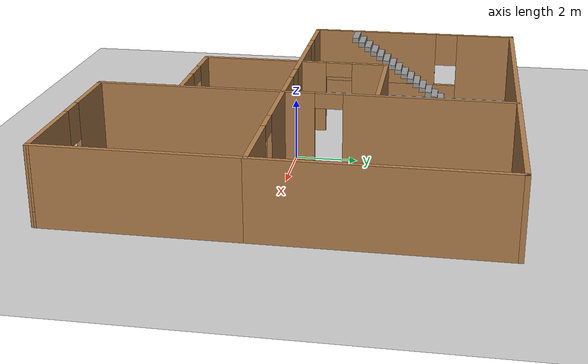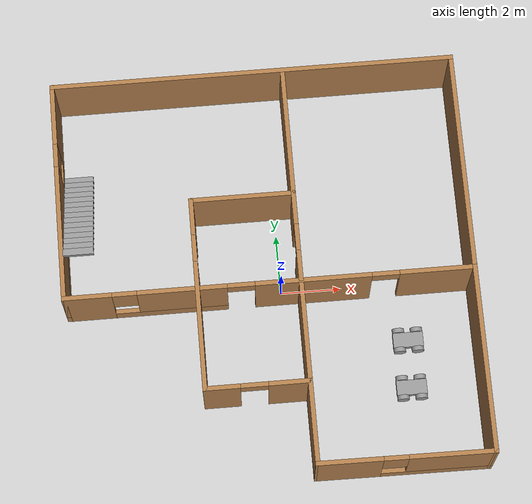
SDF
<sdf version="1.6">
 <world name="default">
  <plugin name="welcome_message" filename="libwelcome_message.so"/>
  <light name="sun" type="directional">
   <pose>0 0 10 0 -0 0</pose>
   <diffuse>0.8 0.8 0.8 1</diffuse>
   <specular>0.2 0.2 0.2 1</specular>
   <attenuation>
    <range>1000</range>
    <constant>0.9</constant>
    <linear>0.01</linear>
    <quadratic>0.001</quadratic>
   </attenuation>
   <direction>-0.5 0.1 -0.9</direction>
  </light>
  <model name="ground_plane">
   <static>1</static>
   <link name="link">
    <collision name="collision">
     <geometry><plane><normal>0 0 1</normal><size>100 100</size></plane></geometry>
     <surface><friction><ode><mu>100</mu><mu2>50</mu2></ode></friction></surface>
    </collision>
    <visual name="visual">
     <cast_shadows>0</cast_shadows>
     <geometry><plane><normal>0 0 1</normal><size>100 100</size></plane></geometry>
     <material>
      <script><uri>file://media/materials/scripts/gazebo.material</uri><name>Gazebo/Grey</name></script>
     </material>
    </visual>
   </link>
  </model>
  <gravity>0 0 -9.8</gravity>
  <magnetic_field>6e-06 2.3e-05 -4.2e-05</magnetic_field>
  <atmosphere type="adiabatic"/>
  <physics name="default_physics" default="0" type="ode">
   <max_step_size>0.001</max_step_size>
   <real_time_factor>1</real_time_factor>
   <real_time_update_rate>1000</real_time_update_rate>
  </physics>
  <scene><ambient>0.4 0.4 0.4 1</ambient><background>0.7 0.7 0.7 1</background><shadows>1</shadows></scene>
  <spherical_coordinates>
   <surface_model>EARTH_WGS84</surface_model>
   <latitude_deg>0</latitude_deg>
   <longitude_deg>0</longitude_deg>
   <elevation>0</elevation>
   <heading_deg>0</heading_deg>
  </spherical_coordinates>
  <model name="model">
   <pose>-0.401008 0.308796 0 0 -0 0</pose>
   <link name="Stairs_0">
    <visual name="Stairs_0_Visual_0">
     <pose>-6.12089 4.20244 0.083333 0 -0 0</pose>
     <geometry><box><size>1 0.233333 0.166667</size></box></geometry>
     <material>
      <script><uri>file://media/materials/scripts/gazebo.material</uri><name>Gazebo/Grey</name></script>
      <ambient>1 1 1 1</ambient>
     </material>
     <meta><layer>0</layer></meta>
    </visual>
    <collision name="Stairs_0_Collision_0">
     <geometry><box><size>1 0.233333 0.166667</size></box></geometry>
     <pose>-6.12089 4.20244 0.083333 0 -0 0</pose>
    </collision>
    <visual name="Stairs_0_Visual_1">
     <pose>-6.12089 3.9691 0.25 0 -0 0</pose>
     <geometry><box><size>1 0.233333 0.166667</size></box></geometry>
     <material>
      <script><uri>file://media/materials/scripts/gazebo.material</uri><name>Gazebo/Grey</name></script>
      <ambient>1 1 1 1</ambient>
     </material>
     <meta><layer>0</layer></meta>
    </visual>
    <collision name="Stairs_0_Collision_1">
     <geometry><box><size>1 0.233333 0.166667</size></box></geometry>
     <pose>-6.12089 3.9691 0.25 0 -0 0</pose>
    </collision>
    <visual name="Stairs_0_Visual_2">
     <pose>-6.12089 3.73577 0.416667 0 -0 0</pose>
     <geometry><box><size>1 0.233333 0.166667</size></box></geometry>
     <material>
      <script><uri>file://media/materials/scripts/gazebo.material</uri><name>Gazebo/Grey</name></script>
      <ambient>1 1 1 1</ambient>
     </material>
     <meta><layer>0</layer></meta>
    </visual>
    <collision name="Stairs_0_Collision_2">
     <geometry><box><size>1 0.233333 0.166667</size></box></geometry>
     <pose>-6.12089 3.73577 0.416667 0 -0 0</pose>
    </collision>
    <visual name="Stairs_0_Visual_3">
     <pose>-6.12089 3.50244 0.583333 0 -0 0</pose>
     <geometry><box><size>1 0.233333 0.166667</size></box></geometry>
     <material>
      <script><uri>file://media/materials/scripts/gazebo.material</uri><name>Gazebo/Grey</name></script>
      <ambient>1 1 1 1</ambient>
     </material>
     <meta><layer>0</layer></meta>
    </visual>
    <collision name="Stairs_0_Collision_3">
     <geometry><box><size>1 0.233333 0.166667</size></box></geometry>
     <pose>-6.12089 3.50244 0.583333 0 -0 0</pose>
    </collision>
    <visual name="Stairs_0_Visual_4">
     <pose>-6.12089 3.26911 0.75 0 -0 0</pose>
     <geometry><box><size>1 0.233333 0.166667</size></box></geometry>
     <material>
      <script><uri>file://media/materials/scripts/gazebo.material</uri><name>Gazebo/Grey</name></script>
      <ambient>1 1 1 1</ambient>
     </material>
     <meta><layer>0</layer></meta>
    </visual>
    <collision name="Stairs_0_Collision_4">
     <geometry><box><size>1 0.233333 0.166667</size></box></geometry>
     <pose>-6.12089 3.26911 0.75 0 -0 0</pose>
    </collision>
    <visual name="Stairs_0_Visual_5">
     <pose>-6.12089 3.03577 0.916667 0 -0 0</pose>
     <geometry><box><size>1 0.233333 0.166667</size></box></geometry>
     <material>
      <script><uri>file://media/materials/scripts/gazebo.material</uri><name>Gazebo/Grey</name></script>
      <ambient>1 1 1 1</ambient>
     </material>
     <meta><layer>0</layer></meta>
    </visual>
    <collision name="Stairs_0_Collision_5">
     <geometry><box><size>1 0.233333 0.166667</size></box></geometry>
     <pose>-6.12089 3.03577 0.916667 0 -0 0</pose>
    </collision>
    <visual name="Stairs_0_Visual_6">
     <pose>-6.12089 2.80244 1.08333 0 -0 0</pose>
     <geometry><box><size>1 0.233333 0.166667</size></box></geometry>
     <material>
      <script><uri>file://media/materials/scripts/gazebo.material</uri><name>Gazebo/Grey</name></script>
      <ambient>1 1 1 1</ambient>
     </material>
     <meta><layer>0</layer></meta>
    </visual>
    <collision name="Stairs_0_Collision_6">
     <geometry><box><size>1 0.233333 0.166667</size></box></geometry>
     <pose>-6.12089 2.80244 1.08333 0 -0 0</pose>
    </collision>
    <visual name="Stairs_0_Visual_7">
     <pose>-6.12089 2.5691 1.25 0 -0 0</pose>
     <geometry><box><size>1 0.233333 0.166667</size></box></geometry>
     <material>
      <script><uri>file://media/materials/scripts/gazebo.material</uri><name>Gazebo/Grey</name></script>
      <ambient>1 1 1 1</ambient>
     </material>
     <meta><layer>0</layer></meta>
    </visual>
    <collision name="Stairs_0_Collision_7">
     <geometry><box><size>1 0.233333 0.166667</size></box></geometry>
     <pose>-6.12089 2.5691 1.25 0 -0 0</pose>
    </collision>
    <visual name="Stairs_0_Visual_8">
     <pose>-6.12089 2.33577 1.41667 0 -0 0</pose>
     <geometry><box><size>1 0.233333 0.166667</size></box></geometry>
     <material>
      <script><uri>file://media/materials/scripts/gazebo.material</uri><name>Gazebo/Grey</name></script>
      <ambient>1 1 1 1</ambient>
     </material>
     <meta><layer>0</layer></meta>
    </visual>
    <collision name="Stairs_0_Collision_8">
     <geometry><box><size>1 0.233333 0.166667</size></box></geometry>
     <pose>-6.12089 2.33577 1.41667 0 -0 0</pose>
    </collision>
    <visual name="Stairs_0_Visual_9">
     <pose>-6.12089 2.10244 1.58333 0 -0 0</pose>
     <geometry><box><size>1 0.233333 0.166667</size></box></geometry>
     <material>
      <script><uri>file://media/materials/scripts/gazebo.material</uri><name>Gazebo/Grey</name></script>
      <ambient>1 1 1 1</ambient>
     </material>
     <meta><layer>0</layer></meta>
    </visual>
    <collision name="Stairs_0_Collision_9">
     <geometry><box><size>1 0.233333 0.166667</size></box></geometry>
     <pose>-6.12089 2.10244 1.58333 0 -0 0</pose>
    </collision>
    <visual name="Stairs_0_Visual_10">
     <pose>-6.12089 1.86911 1.75 0 -0 0</pose>
     <geometry><box><size>1 0.233333 0.166667</size></box></geometry>
     <material>
      <script><uri>file://media/materials/scripts/gazebo.material</uri><name>Gazebo/Grey</name></script>
      <ambient>1 1 1 1</ambient>
     </material>
     <meta><layer>0</layer></meta>
    </visual>
    <collision name="Stairs_0_Collision_10">
     <geometry><box><size>1 0.233333 0.166667</size></box></geometry>
     <pose>-6.12089 1.86911 1.75 0 -0 0</pose>
    </collision>
    <visual name="Stairs_0_Visual_11">
     <pose>-6.12089 1.63577 1.91667 0 -0 0</pose>
     <geometry><box><size>1 0.233333 0.166667</size></box></geometry>
     <material>
      <script><uri>file://media/materials/scripts/gazebo.material</uri><name>Gazebo/Grey</name></script>
      <ambient>1 1 1 1</ambient>
     </material>
     <meta><layer>0</layer></meta>
    </visual>
    <collision name="Stairs_0_Collision_11">
     <geometry><box><size>1 0.233333 0.166667</size></box></geometry>
     <pose>-6.12089 1.63577 1.91667 0 -0 0</pose>
    </collision>
    <visual name="Stairs_0_Visual_12">
     <pose>-6.12089 1.40244 2.08333 0 -0 0</pose>
     <geometry><box><size>1 0.233333 0.166667</size></box></geometry>
     <material>
      <script><uri>file://media/materials/scripts/gazebo.material</uri><name>Gazebo/Grey</name></script>
      <ambient>1 1 1 1</ambient>
     </material>
     <meta><layer>0</layer></meta>
    </visual>
    <collision name="Stairs_0_Collision_12">
     <geometry><box><size>1 0.233333 0.166667</size></box></geometry>
     <pose>-6.12089 1.40244 2.08333 0 -0 0</pose>
    </collision>
    <visual name="Stairs_0_Visual_13">
     <pose>-6.12089 1.16911 2.25 0 -0 0</pose>
     <geometry><box><size>1 0.233333 0.166667</size></box></geometry>
     <material>
      <script><uri>file://media/materials/scripts/gazebo.material</uri><name>Gazebo/Grey</name></script>
      <ambient>1 1 1 1</ambient>
     </material>
     <meta><layer>0</layer></meta>
    </visual>
    <collision name="Stairs_0_Collision_13">
     <geometry><box><size>1 0.233333 0.166667</size></box></geometry>
     <pose>-6.12089 1.16911 2.25 0 -0 0</pose>
    </collision>
    <visual name="Stairs_0_Visual_14">
     <pose>-6.12089 0.935772 2.41667 0 -0 0</pose>
     <geometry><box><size>1 0.233333 0.166667</size></box></geometry>
     <material>
      <script><uri>file://media/materials/scripts/gazebo.material</uri><name>Gazebo/Grey</name></script>
      <ambient>1 1 1 1</ambient>
     </material>
     <meta><layer>0</layer></meta>
    </visual>
    <collision name="Stairs_0_Collision_14">
     <geometry><box><size>1 0.233333 0.166667</size></box></geometry>
     <pose>-6.12089 0.935772 2.41667 0 -0 0</pose>
    </collision>
   </link>
   <link name="Wall_10">
    <collision name="Wall_10_Collision">
     <geometry><box><size>6.25 0.15 2.5</size></box></geometry>
     <pose>0 0 1.25 0 -0 0</pose>
    </collision>
    <visual name="Wall_10_Visual">
     <pose>0 0 1.25 0 -0 0</pose>
     <geometry><box><size>6.25 0.15 2.5</size></box></geometry>
     <material>
      <script><uri>file://media/materials/scripts/gazebo.material</uri><name>Gazebo/Wood</name></script>
      <ambient>1 1 1 1</ambient>
     </material>
     <meta><layer>0</layer></meta>
    </visual>
    <pose>6.67469 -3.67469 0 0 -0 1.5708</pose>
   </link>
   <link name="Wall_12">
    <collision name="Wall_12_Collision">
     <geometry><box><size>3.5 0.15 2.5</size></box></geometry>
     <pose>0 0 1.25 0 -0 0</pose>
    </collision>
    <visual name="Wall_12_Visual">
     <pose>0 0 1.25 0 -0 0</pose>
     <geometry><box><size>3.5 0.15 2.5</size></box></geometry>
     <material>
      <script><uri>file://media/materials/scripts/gazebo.material</uri><name>Gazebo/Wood</name></script>
      <ambient>1 1 1 1</ambient>
     </material>
     <meta><layer>0</layer></meta>
    </visual>
    <pose>-0.67352 2.3745 0 0 -0 3.14159</pose>
   </link>
   <link name="Wall_13">
    <pose>-2.34852 -0.800497 0 0 0 -1.5708</pose>
    <visual name="Wall_13_Visual_0">
     <pose>-2.62079 0 1.25 0 -0 0</pose>
     <geometry><box><size>1.25842 0.15 2.5</size></box></geometry>
     <material>
      <script><uri>file://media/materials/scripts/gazebo.material</uri><name>Gazebo/Wood</name></script>
      <ambient>1 1 1 1</ambient>
     </material>
     <meta><layer>0</layer></meta>
    </visual>
    <collision name="Wall_13_Collision_0">
     <geometry><box><size>1.25842 0.15 2.5</size></box></geometry>
     <pose>-2.62079 0 1.25 0 -0 0</pose>
    </collision>
    <visual name="Wall_13_Visual_1">
     <pose>1.07921 0 1.25 0 -0 0</pose>
     <geometry><box><size>4.34157 0.15 2.5</size></box></geometry>
     <material>
      <script><uri>file://media/materials/scripts/gazebo.material</uri><name>Gazebo/Wood</name></script>
      <ambient>1 1 1 1</ambient>
     </material>
     <meta><layer>0</layer></meta>
    </visual>
    <collision name="Wall_13_Collision_1">
     <geometry><box><size>4.34157 0.15 2.5</size></box></geometry>
     <pose>1.07921 0 1.25 0 -0 0</pose>
    </collision>
    <visual name="Wall_13_Visual_2">
     <pose>-1.54157 0 2.25 0 -0 0</pose>
     <geometry><box><size>0.9 0.15 0.5</size></box></geometry>
     <material>
      <script><uri>file://media/materials/scripts/gazebo.material</uri><name>Gazebo/Wood</name></script>
      <ambient>1 1 1 1</ambient>
     </material>
     <meta><layer>0</layer></meta>
    </visual>
    <collision name="Wall_13_Collision_2">
     <geometry><box><size>0.9 0.15 0.5</size></box></geometry>
     <pose>-1.54157 0 2.25 0 -0 0</pose>
    </collision>
   </link>
   <link name="Wall_14">
    <pose>-0.67352 -3.9755 0 0 -0 0</pose>
    <visual name="Wall_14_Visual_0">
     <pose>-1.14388 0 1.25 0 -0 0</pose>
     <geometry><box><size>1.21223 0.15 2.5</size></box></geometry>
     <material>
      <script><uri>file://media/materials/scripts/gazebo.material</uri><name>Gazebo/Wood</name></script>
      <ambient>1 1 1 1</ambient>
     </material>
     <meta><layer>0</layer></meta>
    </visual>
    <collision name="Wall_14_Collision_0">
     <geometry><box><size>1.21223 0.15 2.5</size></box></geometry>
     <pose>-1.14388 0 1.25 0 -0 0</pose>
    </collision>
    <visual name="Wall_14_Visual_1">
     <pose>1.05612 0 1.25 0 -0 0</pose>
     <geometry><box><size>1.38777 0.15 2.5</size></box></geometry>
     <material>
      <script><uri>file://media/materials/scripts/gazebo.material</uri><name>Gazebo/Wood</name></script>
      <ambient>1 1 1 1</ambient>
     </material>
     <meta><layer>0</layer></meta>
    </visual>
    <collision name="Wall_14_Collision_1">
     <geometry><box><size>1.38777 0.15 2.5</size></box></geometry>
     <pose>1.05612 0 1.25 0 -0 0</pose>
    </collision>
    <visual name="Wall_14_Visual_2">
     <pose>-0.087766 0 2.25 0 -0 0</pose>
     <geometry><box><size>0.9 0.15 0.5</size></box></geometry>
     <material>
      <script><uri>file://media/materials/scripts/gazebo.material</uri><name>Gazebo/Wood</name></script>
      <ambient>1 1 1 1</ambient>
     </material>
     <meta><layer>0</layer></meta>
    </visual>
    <collision name="Wall_14_Collision_2">
     <geometry><box><size>0.9 0.15 0.5</size></box></geometry>
     <pose>-0.087766 0 2.25 0 -0 0</pose>
    </collision>
   </link>
   <link name="Wall_3">
    <pose>-6.67531 3.05031 0 0 0 -1.5708</pose>
    <visual name="Wall_3_Visual_0">
     <pose>-2.7056 0 1.25 0 -0 0</pose>
     <geometry><box><size>2.0888 0.15 2.5</size></box></geometry>
     <material>
      <script><uri>file://media/materials/scripts/gazebo.material</uri><name>Gazebo/Wood</name></script>
      <ambient>1 1 1 1</ambient>
     </material>
     <meta><layer>0</layer></meta>
    </visual>
    <collision name="Wall_3_Collision_0">
     <geometry><box><size>2.0888 0.15 2.5</size></box></geometry>
     <pose>-2.7056 0 1.25 0 -0 0</pose>
    </collision>
    <visual name="Wall_3_Visual_1">
     <pose>1.0444 0 0.25 0 -0 0</pose>
     <geometry><box><size>5.4112 0.15 0.5</size></box></geometry>
     <material>
      <script><uri>file://media/materials/scripts/gazebo.material</uri><name>Gazebo/Wood</name></script>
      <ambient>1 1 1 1</ambient>
     </material>
     <meta><layer>0</layer></meta>
    </visual>
    <collision name="Wall_3_Collision_1">
     <geometry><box><size>5.4112 0.15 0.5</size></box></geometry>
     <pose>1.0444 0 0.25 0 -0 0</pose>
    </collision>
    <visual name="Wall_3_Visual_2">
     <pose>1.4444 0 1.5 0 -0 0</pose>
     <geometry><box><size>4.6112 0.15 2</size></box></geometry>
     <material>
      <script><uri>file://media/materials/scripts/gazebo.material</uri><name>Gazebo/Wood</name></script>
      <ambient>1 1 1 1</ambient>
     </material>
     <meta><layer>0</layer></meta>
    </visual>
    <collision name="Wall_3_Collision_2">
     <geometry><box><size>4.6112 0.15 2</size></box></geometry>
     <pose>1.4444 0 1.5 0 -0 0</pose>
    </collision>
    <visual name="Wall_3_Visual_3">
     <pose>-1.2612 0 1.9 0 -0 0</pose>
     <geometry><box><size>0.8 0.15 1.2</size></box></geometry>
     <material>
      <script><uri>file://media/materials/scripts/gazebo.material</uri><name>Gazebo/Wood</name></script>
      <ambient>1 1 1 1</ambient>
     </material>
     <meta><layer>0</layer></meta>
    </visual>
    <collision name="Wall_3_Collision_3">
     <geometry><box><size>0.8 0.15 1.2</size></box></geometry>
     <pose>-1.2612 0 1.9 0 -0 0</pose>
    </collision>
   </link>
   <link name="Wall_4">
    <pose>-0.000311 -0.624689 0 0 -0 0</pose>
    <visual name="Wall_4_Visual_0">
     <pose>-5.93232 0 1.25 0 -0 0</pose>
     <geometry><box><size>1.63535 0.15 2.5</size></box></geometry>
     <material>
      <script><uri>file://media/materials/scripts/gazebo.material</uri><name>Gazebo/Wood</name></script>
      <ambient>1 1 1 1</ambient>
     </material>
     <meta><layer>0</layer></meta>
    </visual>
    <collision name="Wall_4_Collision_0">
     <geometry><box><size>1.63535 0.15 2.5</size></box></geometry>
     <pose>-5.93232 0 1.25 0 -0 0</pose>
    </collision>
    <visual name="Wall_4_Visual_1">
     <pose>1.42467 0 1.25 0 -0 0</pose>
     <geometry><box><size>3.80773 0.15 2.5</size></box></geometry>
     <material>
      <script><uri>file://media/materials/scripts/gazebo.material</uri><name>Gazebo/Wood</name></script>
      <ambient>1 1 1 1</ambient>
     </material>
     <meta><layer>0</layer></meta>
    </visual>
    <collision name="Wall_4_Collision_1">
     <geometry><box><size>3.80773 0.15 2.5</size></box></geometry>
     <pose>1.42467 0 1.25 0 -0 0</pose>
    </collision>
    <visual name="Wall_4_Visual_2">
     <pose>5.48927 0 1.25 0 -0 0</pose>
     <geometry><box><size>2.52147 0.15 2.5</size></box></geometry>
     <material>
      <script><uri>file://media/materials/scripts/gazebo.material</uri><name>Gazebo/Wood</name></script>
      <ambient>1 1 1 1</ambient>
     </material>
     <meta><layer>0</layer></meta>
    </visual>
    <collision name="Wall_4_Collision_2">
     <geometry><box><size>2.52147 0.15 2.5</size></box></geometry>
     <pose>5.48927 0 1.25 0 -0 0</pose>
    </collision>
    <visual name="Wall_4_Visual_3">
     <pose>-3.24693 0 0.25 0 -0 0</pose>
     <geometry><box><size>3.73545 0.15 0.5</size></box></geometry>
     <material>
      <script><uri>file://media/materials/scripts/gazebo.material</uri><name>Gazebo/Wood</name></script>
      <ambient>1 1 1 1</ambient>
     </material>
     <meta><layer>0</layer></meta>
    </visual>
    <collision name="Wall_4_Collision_3">
     <geometry><box><size>3.73545 0.15 0.5</size></box></geometry>
     <pose>-3.24693 0 0.25 0 -0 0</pose>
    </collision>
    <visual name="Wall_4_Visual_4">
     <pose>-2.84693 0 1.5 0 -0 0</pose>
     <geometry><box><size>2.93545 0.15 2</size></box></geometry>
     <material>
      <script><uri>file://media/materials/scripts/gazebo.material</uri><name>Gazebo/Wood</name></script>
      <ambient>1 1 1 1</ambient>
     </material>
     <meta><layer>0</layer></meta>
    </visual>
    <collision name="Wall_4_Collision_4">
     <geometry><box><size>2.93545 0.15 2</size></box></geometry>
     <pose>-2.84693 0 1.5 0 -0 0</pose>
    </collision>
    <visual name="Wall_4_Visual_5">
     <pose>-4.71465 0 1.9 0 -0 0</pose>
     <geometry><box><size>0.8 0.15 1.2</size></box></geometry>
     <material>
      <script><uri>file://media/materials/scripts/gazebo.material</uri><name>Gazebo/Wood</name></script>
      <ambient>1 1 1 1</ambient>
     </material>
     <meta><layer>0</layer></meta>
    </visual>
    <collision name="Wall_4_Collision_5">
     <geometry><box><size>0.8 0.15 1.2</size></box></geometry>
     <pose>-4.71465 0 1.9 0 -0 0</pose>
    </collision>
    <visual name="Wall_4_Visual_6">
     <pose>3.77853 0 2.25 0 -0 0</pose>
     <geometry><box><size>0.9 0.15 0.5</size></box></geometry>
     <material>
      <script><uri>file://media/materials/scripts/gazebo.material</uri><name>Gazebo/Wood</name></script>
      <ambient>1 1 1 1</ambient>
     </material>
     <meta><layer>0</layer></meta>
    </visual>
    <collision name="Wall_4_Collision_6">
     <geometry><box><size>0.9 0.15 0.5</size></box></geometry>
     <pose>3.77853 0 2.25 0 -0 0</pose>
    </collision>
    <visual name="Wall_4_Visual_7">
     <pose>-0.9292 0 2.25 0 -0 0</pose>
     <geometry><box><size>0.9 0.15 0.5</size></box></geometry>
     <material>
      <script><uri>file://media/materials/scripts/gazebo.material</uri><name>Gazebo/Wood</name></script>
      <ambient>1 1 1 1</ambient>
     </material>
     <meta><layer>0</layer></meta>
    </visual>
    <collision name="Wall_4_Collision_7">
     <geometry><box><size>0.9 0.15 0.5</size></box></geometry>
     <pose>-0.9292 0 2.25 0 -0 0</pose>
    </collision>
   </link>
   <link name="Wall_5">
    <collision name="Wall_5_Collision">
     <geometry><box><size>7.5 0.15 2.5</size></box></geometry>
     <pose>0 0 1.25 0 -0 0</pose>
    </collision>
    <visual name="Wall_5_Visual">
     <pose>0 0 1.25 0 -0 0</pose>
     <geometry><box><size>7.5 0.15 2.5</size></box></geometry>
     <material>
      <script><uri>file://media/materials/scripts/gazebo.material</uri><name>Gazebo/Wood</name></script>
      <ambient>1 1 1 1</ambient>
     </material>
     <meta><layer>0</layer></meta>
    </visual>
    <pose>6.67469 3.05031 0 0 -0 1.5708</pose>
   </link>
   <link name="Wall_6">
    <collision name="Wall_6_Collision">
     <geometry><box><size>13.5 0.15 2.5</size></box></geometry>
     <pose>0 0 1.25 0 -0 0</pose>
    </collision>
    <visual name="Wall_6_Visual">
     <pose>0 0 1.25 0 -0 0</pose>
     <geometry><box><size>13.5 0.15 2.5</size></box></geometry>
     <material>
      <script><uri>file://media/materials/scripts/gazebo.material</uri><name>Gazebo/Wood</name></script>
      <ambient>1 1 1 1</ambient>
     </material>
     <meta><layer>0</layer></meta>
    </visual>
    <pose>-0.000311 6.72531 0 0 -0 3.14159</pose>
   </link>
   <link name="Wall_8">
    <pose>1.02164 -0.002589 0 0 0 -1.5708</pose>
    <visual name="Wall_8_Visual_0">
     <pose>-4.02595 0 1.25 0 -0 0</pose>
     <geometry><box><size>5.44811 0.15 2.5</size></box></geometry>
     <material>
      <script><uri>file://media/materials/scripts/gazebo.material</uri><name>Gazebo/Wood</name></script>
      <ambient>1 1 1 1</ambient>
     </material>
     <meta><layer>0</layer></meta>
    </visual>
    <collision name="Wall_8_Collision_0">
     <geometry><box><size>5.44811 0.15 2.5</size></box></geometry>
     <pose>-4.02595 0 1.25 0 -0 0</pose>
    </collision>
    <visual name="Wall_8_Visual_1">
     <pose>3.17406 0 1.25 0 -0 0</pose>
     <geometry><box><size>7.15189 0.15 2.5</size></box></geometry>
     <material>
      <script><uri>file://media/materials/scripts/gazebo.material</uri><name>Gazebo/Wood</name></script>
      <ambient>1 1 1 1</ambient>
     </material>
     <meta><layer>0</layer></meta>
    </visual>
    <collision name="Wall_8_Collision_1">
     <geometry><box><size>7.15189 0.15 2.5</size></box></geometry>
     <pose>3.17406 0 1.25 0 -0 0</pose>
    </collision>
    <visual name="Wall_8_Visual_2">
     <pose>-0.85189 0 2.25 0 -0 0</pose>
     <geometry><box><size>0.9 0.15 0.5</size></box></geometry>
     <material>
      <script><uri>file://media/materials/scripts/gazebo.material</uri><name>Gazebo/Wood</name></script>
      <ambient>1 1 1 1</ambient>
     </material>
     <meta><layer>0</layer></meta>
    </visual>
    <collision name="Wall_8_Collision_2">
     <geometry><box><size>0.9 0.15 0.5</size></box></geometry>
     <pose>-0.85189 0 2.25 0 -0 0</pose>
    </collision>
   </link>
   <link name="Wall_9">
    <pose>3.84816 -6.70114 0 0 0 -0.008332</pose>
    <visual name="Wall_9_Visual_0">
     <pose>-1.81964 0 1.25 0 -0 0</pose>
     <geometry><box><size>2.16396 0.15 2.5</size></box></geometry>
     <material>
      <script><uri>file://media/materials/scripts/gazebo.material</uri><name>Gazebo/Wood</name></script>
      <ambient>1 1 1 1</ambient>
     </material>
     <meta><layer>0</layer></meta>
    </visual>
    <collision name="Wall_9_Collision_0">
     <geometry><box><size>2.16396 0.15 2.5</size></box></geometry>
     <pose>-1.81964 0 1.25 0 -0 0</pose>
    </collision>
    <visual name="Wall_9_Visual_1">
     <pose>1.08198 0 0.25 0 -0 0</pose>
     <geometry><box><size>3.63928 0.15 0.5</size></box></geometry>
     <material>
      <script><uri>file://media/materials/scripts/gazebo.material</uri><name>Gazebo/Wood</name></script>
      <ambient>1 1 1 1</ambient>
     </material>
     <meta><layer>0</layer></meta>
    </visual>
    <collision name="Wall_9_Collision_1">
     <geometry><box><size>3.63928 0.15 0.5</size></box></geometry>
     <pose>1.08198 0 0.25 0 -0 0</pose>
    </collision>
    <visual name="Wall_9_Visual_2">
     <pose>1.48198 0 1.5 0 -0 0</pose>
     <geometry><box><size>2.83928 0.15 2</size></box></geometry>
     <material>
      <script><uri>file://media/materials/scripts/gazebo.material</uri><name>Gazebo/Wood</name></script>
      <ambient>1 1 1 1</ambient>
     </material>
     <meta><layer>0</layer></meta>
    </visual>
    <collision name="Wall_9_Collision_2">
     <geometry><box><size>2.83928 0.15 2</size></box></geometry>
     <pose>1.48198 0 1.5 0 -0 0</pose>
    </collision>
    <visual name="Wall_9_Visual_3">
     <pose>-0.33766 0 1.9 0 -0 0</pose>
     <geometry><box><size>0.8 0.15 1.2</size></box></geometry>
     <material>
      <script><uri>file://media/materials/scripts/gazebo.material</uri><name>Gazebo/Wood</name></script>
      <ambient>1 1 1 1</ambient>
     </material>
     <meta><layer>0</layer></meta>
    </visual>
    <collision name="Wall_9_Collision_3">
     <geometry><box><size>0.8 0.15 1.2</size></box></geometry>
     <pose>-0.33766 0 1.9 0 -0 0</pose>
    </collision>
   </link>
   <static>1</static>
  </model>
  <model name="model_0">
   <link name="link_0">
    <inertial>
     <mass>1</mass>
     <inertia>
      <ixx>0.166667</ixx>
      <ixy>0</ixy>
      <ixz>0</ixz>
      <iyy>0.166667</iyy>
      <iyz>0</iyz>
      <izz>0.166667</izz>
     </inertia>
    </inertial>
    <visual name="visual">
     <geometry><box><size>1 0.5 0.2</size></box></geometry>
     <material>
      <lighting>1</lighting>
      <script><uri>file://media/materials/scripts/gazebo.material</uri><name>Gazebo/Grey</name></script>
      <shader type="pixel"><normal_map>__default__</normal_map></shader>
      <ambient>0.3 0.3 0.3 1</ambient>
      <diffuse>0.7 0.7 0.7 1</diffuse>
      <specular>0.01 0.01 0.01 1</specular>
      <emissive>0 0 0 1</emissive>
     </material>
    </visual>
    <collision name="collision">
     <geometry><box><size>1 0.5 0.2</size></box></geometry>
     <surface>
      <friction>
       <ode><mu>1</mu><mu2>1</mu2><fdir1>0 0 0</fdir1><slip1>0</slip1><slip2>0</slip2></ode>
       <torsional>
        <coefficient>1</coefficient>
        <patch_radius>0</patch_radius>
        <surface_radius>0</surface_radius>
        <use_patch_radius>1</use_patch_radius>
        <ode><slip>0</slip></ode>
       </torsional>
      </friction>
      <bounce><restitution_coefficient>0</restitution_coefficient><threshold>1e+06</threshold></bounce>
      <contact>
       <collide_without_contact>0</collide_without_contact>
       <collide_without_contact_bitmask>1</collide_without_contact_bitmask>
       <collide_bitmask>1</collide_bitmask>
       <ode>
        <soft_cfm>0</soft_cfm>
        <soft_erp>0.2</soft_erp>
        <kp>1e+13</kp>
        <kd>1</kd>
        <max_vel>0.01</max_vel>
        <min_depth>0</min_depth>
       </ode>
       <bullet>
        <split_impulse>1</split_impulse>
        <split_impulse_penetration_threshold>-0.01</split_impulse_penetration_threshold>
        <soft_cfm>0</soft_cfm>
        <soft_erp>0.2</soft_erp>
        <kp>1e+13</kp>
        <kd>1</kd>
       </bullet>
      </contact>
     </surface>
    </collision>
   </link>
   <link name="link_1">
    <pose>0.3 -0.325019 0 1.5707 -0 0</pose>
    <inertial>
     <mass>1</mass>
     <inertia><ixx>0.145833</ixx><ixy>0</ixy><ixz>0</ixz><iyy>0.145833</iyy><iyz>0</iyz><izz>0.125</izz></inertia>
    </inertial>
    <visual name="visual">
     <geometry><cylinder><radius>0.2</radius><length>0.15</length></cylinder></geometry>
     <material>
      <lighting>1</lighting>
      <script><uri>file://media/materials/scripts/gazebo.material</uri><name>Gazebo/Grey</name></script>
      <shader type="pixel"><normal_map>__default__</normal_map></shader>
      <ambient>0.3 0.3 0.3 1</ambient>
      <diffuse>0.7 0.7 0.7 1</diffuse>
      <specular>0.01 0.01 0.01 1</specular>
      <emissive>0 0 0 1</emissive>
     </material>
    </visual>
    <collision name="collision">
     <geometry><cylinder><radius>0.2</radius><length>0.15</length></cylinder></geometry>
     <surface>
      <friction>
       <ode><mu>1</mu><mu2>1</mu2><fdir1>0 0 0</fdir1><slip1>0</slip1><slip2>0</slip2></ode>
       <torsional>
        <coefficient>1</coefficient>
        <patch_radius>0</patch_radius>
        <surface_radius>0</surface_radius>
        <use_patch_radius>1</use_patch_radius>
        <ode><slip>0</slip></ode>
       </torsional>
      </friction>
      <bounce><restitution_coefficient>0</restitution_coefficient><threshold>1e+06</threshold></bounce>
      <contact>
       <collide_without_contact>0</collide_without_contact>
       <collide_without_contact_bitmask>1</collide_without_contact_bitmask>
       <collide_bitmask>1</collide_bitmask>
       <ode>
        <soft_cfm>0</soft_cfm>
        <soft_erp>0.2</soft_erp>
        <kp>1e+13</kp>
        <kd>1</kd>
        <max_vel>0.01</max_vel>
        <min_depth>0</min_depth>
       </ode>
       <bullet>
        <split_impulse>1</split_impulse>
        <split_impulse_penetration_threshold>-0.01</split_impulse_penetration_threshold>
        <soft_cfm>0</soft_cfm>
        <soft_erp>0.2</soft_erp>
        <kp>1e+13</kp>
        <kd>1</kd>
       </bullet>
      </contact>
     </surface>
    </collision>
   </link>
   <link name="link_1_clone">
    <pose>0.3 0.325019 0 1.5707 -0 0</pose>
    <inertial>
     <mass>1</mass>
     <inertia><ixx>0.145833</ixx><ixy>0</ixy><ixz>0</ixz><iyy>0.145833</iyy><iyz>0</iyz><izz>0.125</izz></inertia>
    </inertial>
    <visual name="visual">
     <geometry><cylinder><radius>0.2</radius><length>0.15</length></cylinder></geometry>
     <material>
      <lighting>1</lighting>
      <script><uri>file://media/materials/scripts/gazebo.material</uri><name>Gazebo/Grey</name></script>
      <shader type="pixel"><normal_map>__default__</normal_map></shader>
      <ambient>0.3 0.3 0.3 1</ambient>
      <diffuse>0.7 0.7 0.7 1</diffuse>
      <specular>0.01 0.01 0.01 1</specular>
      <emissive>0 0 0 1</emissive>
     </material>
    </visual>
    <collision name="collision">
     <geometry><cylinder><radius>0.2</radius><length>0.15</length></cylinder></geometry>
     <surface>
      <friction>
       <ode><mu>1</mu><mu2>1</mu2><fdir1>0 0 0</fdir1><slip1>0</slip1><slip2>0</slip2></ode>
       <torsional>
        <coefficient>1</coefficient>
        <patch_radius>0</patch_radius>
        <surface_radius>0</surface_radius>
        <use_patch_radius>1</use_patch_radius>
        <ode><slip>0</slip></ode>
       </torsional>
      </friction>
      <bounce><restitution_coefficient>0</restitution_coefficient><threshold>1e+06</threshold></bounce>
      <contact>
       <collide_without_contact>0</collide_without_contact>
       <collide_without_contact_bitmask>1</collide_without_contact_bitmask>
       <collide_bitmask>1</collide_bitmask>
       <ode>
        <soft_cfm>0</soft_cfm>
        <soft_erp>0.2</soft_erp>
        <kp>1e+13</kp>
        <kd>1</kd>
        <max_vel>0.01</max_vel>
        <min_depth>0</min_depth>
       </ode>
       <bullet>
        <split_impulse>1</split_impulse>
        <split_impulse_penetration_threshold>-0.01</split_impulse_penetration_threshold>
        <soft_cfm>0</soft_cfm>
        <soft_erp>0.2</soft_erp>
        <kp>1e+13</kp>
        <kd>1</kd>
       </bullet>
      </contact>
     </surface>
    </collision>
   </link>
   <link name="link_1_clone_0">
    <pose>-0.3 0.325019 0 1.5707 -0 0</pose>
    <inertial>
     <mass>1</mass>
     <inertia><ixx>0.145833</ixx><ixy>0</ixy><ixz>0</ixz><iyy>0.145833</iyy><iyz>0</iyz><izz>0.125</izz></inertia>
    </inertial>
    <visual name="visual">
     <geometry><cylinder><radius>0.2</radius><length>0.15</length></cylinder></geometry>
     <material>
      <lighting>1</lighting>
      <script><uri>file://media/materials/scripts/gazebo.material</uri><name>Gazebo/Grey</name></script>
      <shader type="pixel"><normal_map>__default__</normal_map></shader>
      <ambient>0.3 0.3 0.3 1</ambient>
      <diffuse>0.7 0.7 0.7 1</diffuse>
      <specular>0.01 0.01 0.01 1</specular>
      <emissive>0 0 0 1</emissive>
     </material>
    </visual>
    <collision name="collision">
     <geometry><cylinder><radius>0.2</radius><length>0.15</length></cylinder></geometry>
     <surface>
      <friction>
       <ode><mu>1</mu><mu2>1</mu2><fdir1>0 0 0</fdir1><slip1>0</slip1><slip2>0</slip2></ode>
       <torsional>
        <coefficient>1</coefficient>
        <patch_radius>0</patch_radius>
        <surface_radius>0</surface_radius>
        <use_patch_radius>1</use_patch_radius>
        <ode><slip>0</slip></ode>
       </torsional>
      </friction>
      <bounce><restitution_coefficient>0</restitution_coefficient><threshold>1e+06</threshold></bounce>
      <contact>
       <collide_without_contact>0</collide_without_contact>
       <collide_without_contact_bitmask>1</collide_without_contact_bitmask>
       <collide_bitmask>1</collide_bitmask>
       <ode>
        <soft_cfm>0</soft_cfm>
        <soft_erp>0.2</soft_erp>
        <kp>1e+13</kp>
        <kd>1</kd>
        <max_vel>0.01</max_vel>
        <min_depth>0</min_depth>
       </ode>
       <bullet>
        <split_impulse>1</split_impulse>
        <split_impulse_penetration_threshold>-0.01</split_impulse_penetration_threshold>
        <soft_cfm>0</soft_cfm>
        <soft_erp>0.2</soft_erp>
        <kp>1e+13</kp>
        <kd>1</kd>
       </bullet>
      </contact>
     </surface>
    </collision>
   </link>
   <link name="link_1_clone_1">
    <pose>-0.3 -0.325019 0 1.5707 -0 0</pose>
    <inertial>
     <mass>1</mass>
     <inertia><ixx>0.145833</ixx><ixy>0</ixy><ixz>0</ixz><iyy>0.145833</iyy><iyz>0</iyz><izz>0.125</izz></inertia>
    </inertial>
    <visual name="visual">
     <geometry><cylinder><radius>0.2</radius><length>0.15</length></cylinder></geometry>
     <material>
      <lighting>1</lighting>
      <script><uri>file://media/materials/scripts/gazebo.material</uri><name>Gazebo/Grey</name></script>
      <shader type="pixel"><normal_map>__default__</normal_map></shader>
      <ambient>0.3 0.3 0.3 1</ambient>
      <diffuse>0.7 0.7 0.7 1</diffuse>
      <specular>0.01 0.01 0.01 1</specular>
      <emissive>0 0 0 1</emissive>
     </material>
    </visual>
    <collision name="collision">
     <geometry><cylinder><radius>0.2</radius><length>0.15</length></cylinder></geometry>
     <surface>
      <friction>
       <ode><mu>1</mu><mu2>1</mu2><fdir1>0 0 0</fdir1><slip1>0</slip1><slip2>0</slip2></ode>
       <torsional>
        <coefficient>1</coefficient>
        <patch_radius>0</patch_radius>
        <surface_radius>0</surface_radius>
        <use_patch_radius>1</use_patch_radius>
        <ode><slip>0</slip></ode>
       </torsional>
      </friction>
      <bounce><restitution_coefficient>0</restitution_coefficient><threshold>1e+06</threshold></bounce>
      <contact>
       <collide_without_contact>0</collide_without_contact>
       <collide_without_contact_bitmask>1</collide_without_contact_bitmask>
       <collide_bitmask>1</collide_bitmask>
       <ode>
        <soft_cfm>0</soft_cfm>
        <soft_erp>0.2</soft_erp>
        <kp>1e+13</kp>
        <kd>1</kd>
        <max_vel>0.01</max_vel>
        <min_depth>0</min_depth>
       </ode>
       <bullet>
        <split_impulse>1</split_impulse>
        <split_impulse_penetration_threshold>-0.01</split_impulse_penetration_threshold>
        <soft_cfm>0</soft_cfm>
        <soft_erp>0.2</soft_erp>
        <kp>1e+13</kp>
        <kd>1</kd>
       </bullet>
      </contact>
     </surface>
    </collision>
   </link>
   <joint name="link_0_JOINT_0" type="revolute">
    <parent>link_0</parent>
    <child>link_1</child>
    <axis>
     <xyz>0 0 1</xyz>
     <use_parent_model_frame>0</use_parent_model_frame>
     <limit>
      <lower>-1.79769e+308</lower>
      <upper>1.79769e+308</upper>
      <effort>-1</effort>
      <velocity>-1</velocity>
     </limit>
     <dynamics>
      <spring_reference>0</spring_reference>
      <spring_stiffness>0</spring_stiffness>
      <damping>0</damping>
     </dynamics>
    </axis>
    <physics>
     <ode><limit><cfm>0</cfm><erp>0.2</erp></limit><suspension><cfm>0</cfm><erp>0.2</erp></suspension></ode>
    </physics>
   </joint>
   <joint name="link_0_JOINT_1" type="revolute">
    <parent>link_0</parent>
    <child>link_1_clone</child>
    <axis>
     <xyz>0 0 1</xyz>
     <use_parent_model_frame>0</use_parent_model_frame>
     <limit>
      <lower>-1.79769e+308</lower>
      <upper>1.79769e+308</upper>
      <effort>-1</effort>
      <velocity>-1</velocity>
     </limit>
     <dynamics>
      <spring_reference>0</spring_reference>
      <spring_stiffness>0</spring_stiffness>
      <damping>0</damping>
     </dynamics>
    </axis>
    <physics>
     <ode><limit><cfm>0</cfm><erp>0.2</erp></limit><suspension><cfm>0</cfm><erp>0.2</erp></suspension></ode>
    </physics>
   </joint>
   <joint name="link_0_JOINT_2" type="revolute">
    <parent>link_0</parent>
    <child>link_1_clone_0</child>
    <axis>
     <xyz>0 0 1</xyz>
     <use_parent_model_frame>0</use_parent_model_frame>
     <limit>
      <lower>-1.79769e+308</lower>
      <upper>1.79769e+308</upper>
      <effort>-1</effort>
      <velocity>-1</velocity>
     </limit>
     <dynamics>
      <spring_reference>0</spring_reference>
      <spring_stiffness>0</spring_stiffness>
      <damping>0</damping>
     </dynamics>
    </axis>
    <physics>
     <ode><limit><cfm>0</cfm><erp>0.2</erp></limit><suspension><cfm>0</cfm><erp>0.2</erp></suspension></ode>
    </physics>
   </joint>
   <joint name="link_0_JOINT_3" type="revolute">
    <parent>link_0</parent>
    <child>link_1_clone_1</child>
    <axis>
     <xyz>0 0 1</xyz>
     <use_parent_model_frame>0</use_parent_model_frame>
     <limit>
      <lower>-1.79769e+308</lower>
      <upper>1.79769e+308</upper>
      <effort>-1</effort>
      <velocity>-1</velocity>
     </limit>
     <dynamics>
      <spring_reference>0</spring_reference>
      <spring_stiffness>0</spring_stiffness>
      <damping>0</damping>
     </dynamics>
    </axis>
    <physics>
     <ode><limit><cfm>0</cfm><erp>0.2</erp></limit><suspension><cfm>0</cfm><erp>0.2</erp></suspension></ode>
    </physics>
   </joint>
   <static>0</static>
   <pose>4.06267 -2.01109 0.200008 -0 -3e-06 -0.00243</pose>
  </model>
  <model name="model_1">
   <link name="link_0">
    <inertial>
     <mass>1</mass>
     <inertia>
      <ixx>0.166667</ixx>
      <ixy>0</ixy>
      <ixz>0</ixz>
      <iyy>0.166667</iyy>
      <iyz>0</iyz>
      <izz>0.166667</izz>
     </inertia>
    </inertial>
    <visual name="visual">
     <geometry><box><size>1 0.5 0.2</size></box></geometry>
     <material>
      <lighting>1</lighting>
      <script><uri>file://media/materials/scripts/gazebo.material</uri><name>Gazebo/Grey</name></script>
      <shader type="pixel"><normal_map>__default__</normal_map></shader>
      <ambient>0.3 0.3 0.3 1</ambient>
      <diffuse>0.7 0.7 0.7 1</diffuse>
      <specular>0.01 0.01 0.01 1</specular>
      <emissive>0 0 0 1</emissive>
     </material>
    </visual>
    <collision name="collision">
     <geometry><box><size>1 0.5 0.2</size></box></geometry>
     <surface>
      <friction>
       <ode><mu>1</mu><mu2>1</mu2><fdir1>0 0 0</fdir1><slip1>0</slip1><slip2>0</slip2></ode>
       <torsional>
        <coefficient>1</coefficient>
        <patch_radius>0</patch_radius>
        <surface_radius>0</surface_radius>
        <use_patch_radius>1</use_patch_radius>
        <ode><slip>0</slip></ode>
       </torsional>
      </friction>
      <bounce><restitution_coefficient>0</restitution_coefficient><threshold>1e+06</threshold></bounce>
      <contact>
       <collide_without_contact>0</collide_without_contact>
       <collide_without_contact_bitmask>1</collide_without_contact_bitmask>
       <collide_bitmask>1</collide_bitmask>
       <ode>
        <soft_cfm>0</soft_cfm>
        <soft_erp>0.2</soft_erp>
        <kp>1e+13</kp>
        <kd>1</kd>
        <max_vel>0.01</max_vel>
        <min_depth>0</min_depth>
       </ode>
       <bullet>
        <split_impulse>1</split_impulse>
        <split_impulse_penetration_threshold>-0.01</split_impulse_penetration_threshold>
        <soft_cfm>0</soft_cfm>
        <soft_erp>0.2</soft_erp>
        <kp>1e+13</kp>
        <kd>1</kd>
       </bullet>
      </contact>
     </surface>
    </collision>
   </link>
   <link name="link_1">
    <pose>0.3 -0.325019 0 1.5707 -0 0</pose>
    <inertial>
     <mass>1</mass>
     <inertia><ixx>0.145833</ixx><ixy>0</ixy><ixz>0</ixz><iyy>0.145833</iyy><iyz>0</iyz><izz>0.125</izz></inertia>
    </inertial>
    <visual name="visual">
     <geometry><cylinder><radius>0.2</radius><length>0.15</length></cylinder></geometry>
     <material>
      <lighting>1</lighting>
      <script><uri>file://media/materials/scripts/gazebo.material</uri><name>Gazebo/Grey</name></script>
      <shader type="pixel"><normal_map>__default__</normal_map></shader>
      <ambient>0.3 0.3 0.3 1</ambient>
      <diffuse>0.7 0.7 0.7 1</diffuse>
      <specular>0.01 0.01 0.01 1</specular>
      <emissive>0 0 0 1</emissive>
     </material>
    </visual>
    <collision name="collision">
     <geometry><cylinder><radius>0.2</radius><length>0.15</length></cylinder></geometry>
     <surface>
      <friction>
       <ode><mu>1</mu><mu2>1</mu2><fdir1>0 0 0</fdir1><slip1>0</slip1><slip2>0</slip2></ode>
       <torsional>
        <coefficient>1</coefficient>
        <patch_radius>0</patch_radius>
        <surface_radius>0</surface_radius>
        <use_patch_radius>1</use_patch_radius>
        <ode><slip>0</slip></ode>
       </torsional>
      </friction>
      <bounce><restitution_coefficient>0</restitution_coefficient><threshold>1e+06</threshold></bounce>
      <contact>
       <collide_without_contact>0</collide_without_contact>
       <collide_without_contact_bitmask>1</collide_without_contact_bitmask>
       <collide_bitmask>1</collide_bitmask>
       <ode>
        <soft_cfm>0</soft_cfm>
        <soft_erp>0.2</soft_erp>
        <kp>1e+13</kp>
        <kd>1</kd>
        <max_vel>0.01</max_vel>
        <min_depth>0</min_depth>
       </ode>
       <bullet>
        <split_impulse>1</split_impulse>
        <split_impulse_penetration_threshold>-0.01</split_impulse_penetration_threshold>
        <soft_cfm>0</soft_cfm>
        <soft_erp>0.2</soft_erp>
        <kp>1e+13</kp>
        <kd>1</kd>
       </bullet>
      </contact>
     </surface>
    </collision>
   </link>
   <link name="link_1_clone">
    <pose>0.3 0.325019 0 1.5707 -0 0</pose>
    <inertial>
     <mass>1</mass>
     <inertia><ixx>0.145833</ixx><ixy>0</ixy><ixz>0</ixz><iyy>0.145833</iyy><iyz>0</iyz><izz>0.125</izz></inertia>
    </inertial>
    <visual name="visual">
     <geometry><cylinder><radius>0.2</radius><length>0.15</length></cylinder></geometry>
     <material>
      <lighting>1</lighting>
      <script><uri>file://media/materials/scripts/gazebo.material</uri><name>Gazebo/Grey</name></script>
      <shader type="pixel"><normal_map>__default__</normal_map></shader>
      <ambient>0.3 0.3 0.3 1</ambient>
      <diffuse>0.7 0.7 0.7 1</diffuse>
      <specular>0.01 0.01 0.01 1</specular>
      <emissive>0 0 0 1</emissive>
     </material>
    </visual>
    <collision name="collision">
     <geometry><cylinder><radius>0.2</radius><length>0.15</length></cylinder></geometry>
     <surface>
      <friction>
       <ode><mu>1</mu><mu2>1</mu2><fdir1>0 0 0</fdir1><slip1>0</slip1><slip2>0</slip2></ode>
       <torsional>
        <coefficient>1</coefficient>
        <patch_radius>0</patch_radius>
        <surface_radius>0</surface_radius>
        <use_patch_radius>1</use_patch_radius>
        <ode><slip>0</slip></ode>
       </torsional>
      </friction>
      <bounce><restitution_coefficient>0</restitution_coefficient><threshold>1e+06</threshold></bounce>
      <contact>
       <collide_without_contact>0</collide_without_contact>
       <collide_without_contact_bitmask>1</collide_without_contact_bitmask>
       <collide_bitmask>1</collide_bitmask>
       <ode>
        <soft_cfm>0</soft_cfm>
        <soft_erp>0.2</soft_erp>
        <kp>1e+13</kp>
        <kd>1</kd>
        <max_vel>0.01</max_vel>
        <min_depth>0</min_depth>
       </ode>
       <bullet>
        <split_impulse>1</split_impulse>
        <split_impulse_penetration_threshold>-0.01</split_impulse_penetration_threshold>
        <soft_cfm>0</soft_cfm>
        <soft_erp>0.2</soft_erp>
        <kp>1e+13</kp>
        <kd>1</kd>
       </bullet>
      </contact>
     </surface>
    </collision>
   </link>
   <link name="link_1_clone_0">
    <pose>-0.3 0.325019 0 1.5707 -0 0</pose>
    <inertial>
     <mass>1</mass>
     <inertia><ixx>0.145833</ixx><ixy>0</ixy><ixz>0</ixz><iyy>0.145833</iyy><iyz>0</iyz><izz>0.125</izz></inertia>
    </inertial>
    <visual name="visual">
     <geometry><cylinder><radius>0.2</radius><length>0.15</length></cylinder></geometry>
     <material>
      <lighting>1</lighting>
      <script><uri>file://media/materials/scripts/gazebo.material</uri><name>Gazebo/Grey</name></script>
      <shader type="pixel"><normal_map>__default__</normal_map></shader>
      <ambient>0.3 0.3 0.3 1</ambient>
      <diffuse>0.7 0.7 0.7 1</diffuse>
      <specular>0.01 0.01 0.01 1</specular>
      <emissive>0 0 0 1</emissive>
     </material>
    </visual>
    <collision name="collision">
     <geometry><cylinder><radius>0.2</radius><length>0.15</length></cylinder></geometry>
     <surface>
      <friction>
       <ode><mu>1</mu><mu2>1</mu2><fdir1>0 0 0</fdir1><slip1>0</slip1><slip2>0</slip2></ode>
       <torsional>
        <coefficient>1</coefficient>
        <patch_radius>0</patch_radius>
        <surface_radius>0</surface_radius>
        <use_patch_radius>1</use_patch_radius>
        <ode><slip>0</slip></ode>
       </torsional>
      </friction>
      <bounce><restitution_coefficient>0</restitution_coefficient><threshold>1e+06</threshold></bounce>
      <contact>
       <collide_without_contact>0</collide_without_contact>
       <collide_without_contact_bitmask>1</collide_without_contact_bitmask>
       <collide_bitmask>1</collide_bitmask>
       <ode>
        <soft_cfm>0</soft_cfm>
        <soft_erp>0.2</soft_erp>
        <kp>1e+13</kp>
        <kd>1</kd>
        <max_vel>0.01</max_vel>
        <min_depth>0</min_depth>
       </ode>
       <bullet>
        <split_impulse>1</split_impulse>
        <split_impulse_penetration_threshold>-0.01</split_impulse_penetration_threshold>
        <soft_cfm>0</soft_cfm>
        <soft_erp>0.2</soft_erp>
        <kp>1e+13</kp>
        <kd>1</kd>
       </bullet>
      </contact>
     </surface>
    </collision>
   </link>
   <link name="link_1_clone_1">
    <pose>-0.3 -0.325019 0 1.5707 -0 0</pose>
    <inertial>
     <mass>1</mass>
     <inertia><ixx>0.145833</ixx><ixy>0</ixy><ixz>0</ixz><iyy>0.145833</iyy><iyz>0</iyz><izz>0.125</izz></inertia>
    </inertial>
    <visual name="visual">
     <geometry><cylinder><radius>0.2</radius><length>0.15</length></cylinder></geometry>
     <material>
      <lighting>1</lighting>
      <script><uri>file://media/materials/scripts/gazebo.material</uri><name>Gazebo/Grey</name></script>
      <shader type="pixel"><normal_map>__default__</normal_map></shader>
      <ambient>0.3 0.3 0.3 1</ambient>
      <diffuse>0.7 0.7 0.7 1</diffuse>
      <specular>0.01 0.01 0.01 1</specular>
      <emissive>0 0 0 1</emissive>
     </material>
    </visual>
    <collision name="collision">
     <geometry><cylinder><radius>0.2</radius><length>0.15</length></cylinder></geometry>
     <surface>
      <friction>
       <ode><mu>1</mu><mu2>1</mu2><fdir1>0 0 0</fdir1><slip1>0</slip1><slip2>0</slip2></ode>
       <torsional>
        <coefficient>1</coefficient>
        <patch_radius>0</patch_radius>
        <surface_radius>0</surface_radius>
        <use_patch_radius>1</use_patch_radius>
        <ode><slip>0</slip></ode>
       </torsional>
      </friction>
      <bounce><restitution_coefficient>0</restitution_coefficient><threshold>1e+06</threshold></bounce>
      <contact>
       <collide_without_contact>0</collide_without_contact>
       <collide_without_contact_bitmask>1</collide_without_contact_bitmask>
       <collide_bitmask>1</collide_bitmask>
       <ode>
        <soft_cfm>0</soft_cfm>
        <soft_erp>0.2</soft_erp>
        <kp>1e+13</kp>
        <kd>1</kd>
        <max_vel>0.01</max_vel>
        <min_depth>0</min_depth>
       </ode>
       <bullet>
        <split_impulse>1</split_impulse>
        <split_impulse_penetration_threshold>-0.01</split_impulse_penetration_threshold>
        <soft_cfm>0</soft_cfm>
        <soft_erp>0.2</soft_erp>
        <kp>1e+13</kp>
        <kd>1</kd>
       </bullet>
      </contact>
     </surface>
    </collision>
   </link>
   <joint name="link_0_JOINT_0" type="revolute">
    <parent>link_0</parent>
    <child>link_1</child>
    <axis>
     <xyz>0 0 1</xyz>
     <use_parent_model_frame>0</use_parent_model_frame>
     <limit>
      <lower>-1.79769e+308</lower>
      <upper>1.79769e+308</upper>
      <effort>-1</effort>
      <velocity>-1</velocity>
     </limit>
     <dynamics>
      <spring_reference>0</spring_reference>
      <spring_stiffness>0</spring_stiffness>
      <damping>0</damping>
     </dynamics>
    </axis>
    <physics>
     <ode><limit><cfm>0</cfm><erp>0.2</erp></limit><suspension><cfm>0</cfm><erp>0.2</erp></suspension></ode>
    </physics>
   </joint>
   <joint name="link_0_JOINT_1" type="revolute">
    <parent>link_0</parent>
    <child>link_1_clone</child>
    <axis>
     <xyz>0 0 1</xyz>
     <use_parent_model_frame>0</use_parent_model_frame>
     <limit>
      <lower>-1.79769e+308</lower>
      <upper>1.79769e+308</upper>
      <effort>-1</effort>
      <velocity>-1</velocity>
     </limit>
     <dynamics>
      <spring_reference>0</spring_reference>
      <spring_stiffness>0</spring_stiffness>
      <damping>0</damping>
     </dynamics>
    </axis>
    <physics>
     <ode><limit><cfm>0</cfm><erp>0.2</erp></limit><suspension><cfm>0</cfm><erp>0.2</erp></suspension></ode>
    </physics>
   </joint>
   <joint name="link_0_JOINT_2" type="revolute">
    <parent>link_0</parent>
    <child>link_1_clone_0</child>
    <axis>
     <xyz>0 0 1</xyz>
     <use_parent_model_frame>0</use_parent_model_frame>
     <limit>
      <lower>-1.79769e+308</lower>
      <upper>1.79769e+308</upper>
      <effort>-1</effort>
      <velocity>-1</velocity>
     </limit>
     <dynamics>
      <spring_reference>0</spring_reference>
      <spring_stiffness>0</spring_stiffness>
      <damping>0</damping>
     </dynamics>
    </axis>
    <physics>
     <ode><limit><cfm>0</cfm><erp>0.2</erp></limit><suspension><cfm>0</cfm><erp>0.2</erp></suspension></ode>
    </physics>
   </joint>
   <joint name="link_0_JOINT_3" type="revolute">
    <parent>link_0</parent>
    <child>link_1_clone_1</child>
    <axis>
     <xyz>0 0 1</xyz>
     <use_parent_model_frame>0</use_parent_model_frame>
     <limit>
      <lower>-1.79769e+308</lower>
      <upper>1.79769e+308</upper>
      <effort>-1</effort>
      <velocity>-1</velocity>
     </limit>
     <dynamics>
      <spring_reference>0</spring_reference>
      <spring_stiffness>0</spring_stiffness>
      <damping>0</damping>
     </dynamics>
    </axis>
    <physics>
     <ode><limit><cfm>0</cfm><erp>0.2</erp></limit><suspension><cfm>0</cfm><erp>0.2</erp></suspension></ode>
    </physics>
   </joint>
   <static>0</static>
   <pose>4.02097 -3.62923 0.200007 0 0 -0.001703</pose>
  </model>
 </world>
</sdf>
